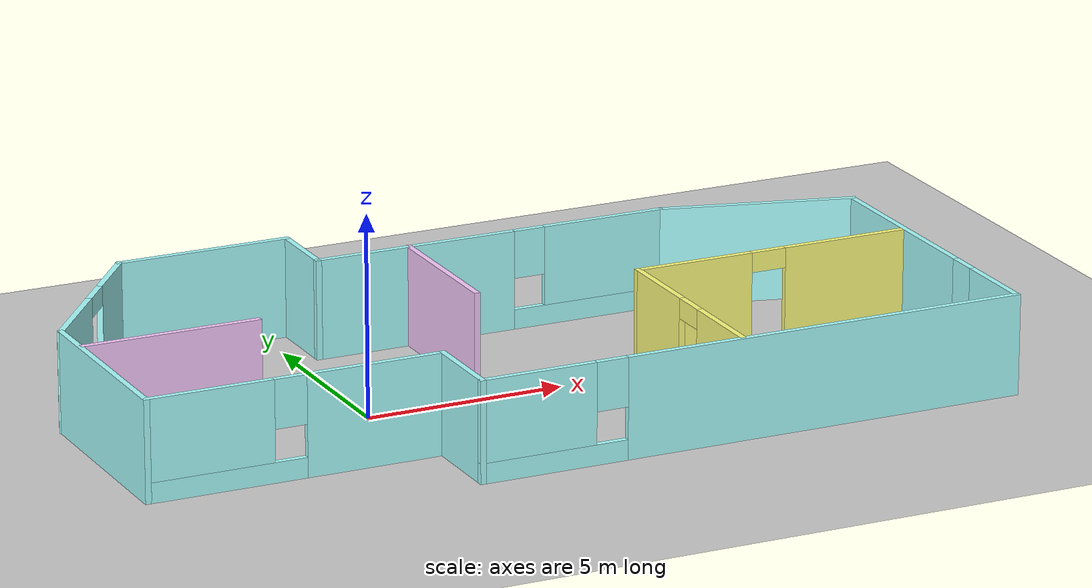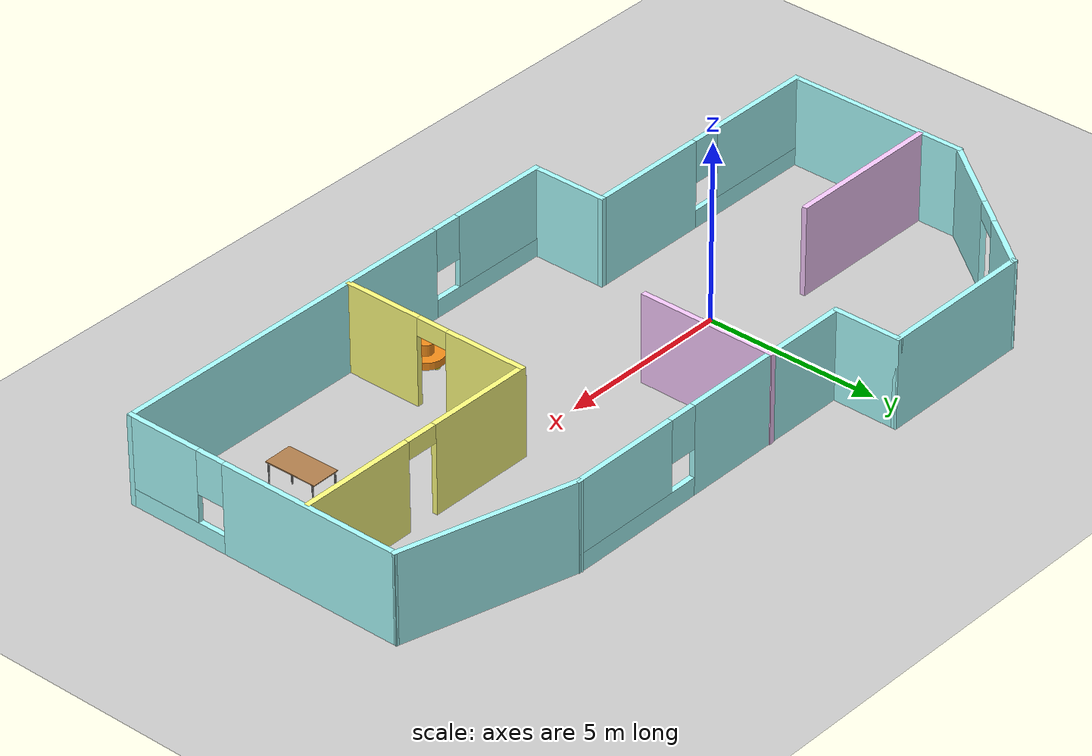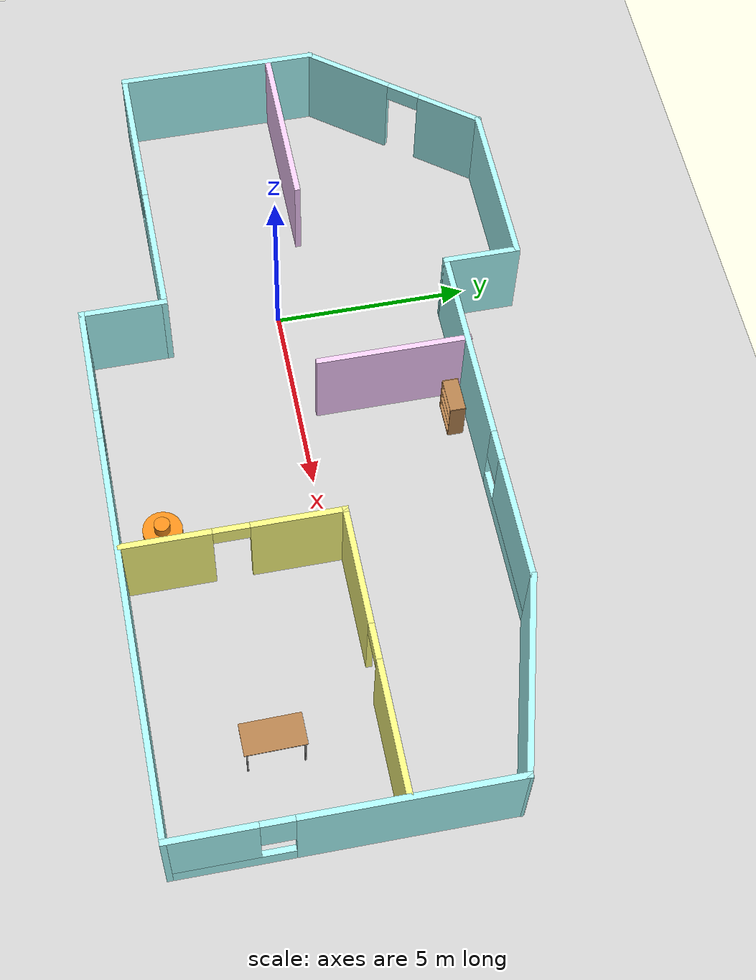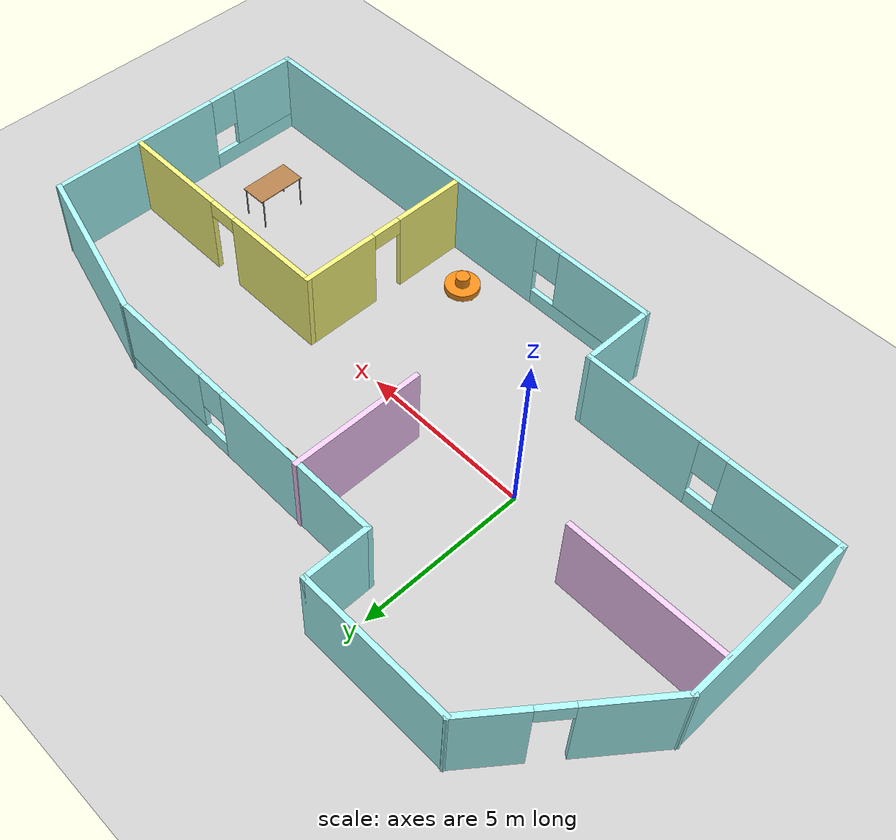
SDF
<sdf version="1.6">
 <world name="default">
  <light name="sun" type="directional">
   <pose>0 0 10 0 -0 0</pose>
   <diffuse>0.8 0.8 0.8 1</diffuse>
   <specular>0.2 0.2 0.2 1</specular>
   <attenuation>
    <range>1000</range>
    <constant>0.9</constant>
    <linear>0.01</linear>
    <quadratic>0.001</quadratic>
   </attenuation>
   <direction>-0.5 0.1 -0.9</direction>
  </light>
  <model name="ground_plane">
   <static>1</static>
   <link name="link">
    <collision name="collision">
     <geometry><plane><normal>0 0 1</normal><size>100 100</size></plane></geometry>
     <surface><friction><ode><mu>100</mu><mu2>50</mu2></ode></friction></surface>
    </collision>
    <visual name="visual">
     <cast_shadows>0</cast_shadows>
     <geometry><plane><normal>0 0 1</normal><size>100 100</size></plane></geometry>
     <material>
      <script><uri>file://media/materials/scripts/gazebo.material</uri><name>Gazebo/Grey</name></script>
     </material>
    </visual>
   </link>
  </model>
  <gravity>0 0 -9.8</gravity>
  <magnetic_field>6e-06 2.3e-05 -4.2e-05</magnetic_field>
  <atmosphere type="adiabatic"/>
  <physics name="default_physics" default="0" type="ode">
   <max_step_size>0.001</max_step_size>
   <real_time_factor>1</real_time_factor>
   <real_time_update_rate>1000</real_time_update_rate>
  </physics>
  <scene><ambient>0.4 0.4 0.4 1</ambient><background>0.7 0.7 0.7 1</background><shadows>1</shadows></scene>
  <spherical_coordinates>
   <surface_model>EARTH_WGS84</surface_model>
   <latitude_deg>0</latitude_deg>
   <longitude_deg>0</longitude_deg>
   <elevation>0</elevation>
   <heading_deg>0</heading_deg>
  </spherical_coordinates>
  <model name="building">
   <pose>3.80498 0.548131 0 0 -0 0</pose>
   <link name="Wall_0">
    <collision name="Wall_0_Collision">
     <geometry><box><size>4.5 0.15 2.5</size></box></geometry>
     <pose>0 0 1.25 0 -0 0</pose>
    </collision>
    <visual name="Wall_0_Visual">
     <pose>0 0 1.25 0 -0 0</pose>
     <geometry><box><size>4.5 0.15 2.5</size></box></geometry>
     <material>
      <script><uri>file://media/materials/scripts/gazebo.material</uri><name>Gazebo/Grey</name></script>
      <ambient>0.666667 1 1 1</ambient>
     </material>
     <meta><layer>0</layer></meta>
    </visual>
    <pose>-5.3531 5.58757 0 0 -0 0</pose>
   </link>
   <link name="Wall_1">
    <collision name="Wall_1_Collision">
     <geometry><box><size>2 0.15 2.5</size></box></geometry>
     <pose>0 0 1.25 0 -0 0</pose>
    </collision>
    <visual name="Wall_1_Visual">
     <pose>0 0 1.25 0 -0 0</pose>
     <geometry><box><size>2 0.15 2.5</size></box></geometry>
     <material>
      <script><uri>file://media/materials/scripts/gazebo.material</uri><name>Gazebo/Grey</name></script>
      <ambient>0.666667 1 1 1</ambient>
     </material>
     <meta><layer>0</layer></meta>
    </visual>
    <pose>-3.1781 4.66257 0 0 0 -1.5708</pose>
   </link>
   <link name="Wall_11">
    <collision name="Wall_11_Collision">
     <geometry><box><size>4.5 0.15 2.5</size></box></geometry>
     <pose>0 0 1.25 0 -0 0</pose>
    </collision>
    <visual name="Wall_11_Visual">
     <pose>0 0 1.25 0 -0 0</pose>
     <geometry><box><size>4.5 0.15 2.5</size></box></geometry>
     <material>
      <script><uri>file://media/materials/scripts/gazebo.material</uri><name>Gazebo/Grey</name></script>
      <ambient>0.976471 0.796078 1 1</ambient>
     </material>
     <meta><layer>0</layer></meta>
    </visual>
    <pose>-8.33401 0.416591 0 0 -0 0</pose>
   </link>
   <link name="Wall_13">
    <collision name="Wall_13_Collision">
     <geometry><box><size>3.93929 0.15 2.5</size></box></geometry>
     <pose>0 0 1.25 0 -0 0</pose>
    </collision>
    <visual name="Wall_13_Visual">
     <pose>0 0 1.25 0 -0 0</pose>
     <geometry><box><size>3.93929 0.15 2.5</size></box></geometry>
     <material>
      <script><uri>file://media/materials/scripts/gazebo.material</uri><name>Gazebo/Grey</name></script>
      <ambient>0.976471 0.796078 1 1</ambient>
     </material>
     <meta><layer>0</layer></meta>
    </visual>
    <pose>-0.775413 1.86793 0 0 0 -1.5708</pose>
   </link>
   <link name="Wall_2">
    <pose>1.3719 3.73757 0 0 -0 0</pose>
    <visual name="Wall_2_Visual_0">
     <pose>-2.00445 0 1.25 0 -0 0</pose>
     <geometry><box><size>5.24111 0.15 2.5</size></box></geometry>
     <material>
      <script><uri>file://media/materials/scripts/gazebo.material</uri><name>Gazebo/Grey</name></script>
      <ambient>0.666667 1 1 1</ambient>
     </material>
     <meta><layer>0</layer></meta>
    </visual>
    <collision name="Wall_2_Collision_0">
     <geometry><box><size>5.24111 0.15 2.5</size></box></geometry>
     <pose>-2.00445 0 1.25 0 -0 0</pose>
    </collision>
    <visual name="Wall_2_Visual_1">
     <pose>2.62055 0 0.25 0 -0 0</pose>
     <geometry><box><size>4.00889 0.15 0.5</size></box></geometry>
     <material>
      <script><uri>file://media/materials/scripts/gazebo.material</uri><name>Gazebo/Grey</name></script>
      <ambient>0.666667 1 1 1</ambient>
     </material>
     <meta><layer>0</layer></meta>
    </visual>
    <collision name="Wall_2_Collision_1">
     <geometry><box><size>4.00889 0.15 0.5</size></box></geometry>
     <pose>2.62055 0 0.25 0 -0 0</pose>
    </collision>
    <visual name="Wall_2_Visual_2">
     <pose>3.02055 0 1.5 0 -0 0</pose>
     <geometry><box><size>3.2089 0.15 2</size></box></geometry>
     <material>
      <script><uri>file://media/materials/scripts/gazebo.material</uri><name>Gazebo/Grey</name></script>
      <ambient>0.666667 1 1 1</ambient>
     </material>
     <meta><layer>0</layer></meta>
    </visual>
    <collision name="Wall_2_Collision_2">
     <geometry><box><size>3.2089 0.15 2</size></box></geometry>
     <pose>3.02055 0 1.5 0 -0 0</pose>
    </collision>
    <visual name="Wall_2_Visual_3">
     <pose>1.01611 0 1.9 0 -0 0</pose>
     <geometry><box><size>0.8 0.15 1.2</size></box></geometry>
     <material>
      <script><uri>file://media/materials/scripts/gazebo.material</uri><name>Gazebo/Grey</name></script>
      <ambient>0.666667 1 1 1</ambient>
     </material>
     <meta><layer>0</layer></meta>
    </visual>
    <collision name="Wall_2_Collision_3">
     <geometry><box><size>0.8 0.15 1.2</size></box></geometry>
     <pose>1.01611 0 1.9 0 -0 0</pose>
    </collision>
   </link>
   <link name="Wall_20">
    <pose>6.95948 -0.191759 0 0 -0 3.14159</pose>
    <visual name="Wall_20_Visual_0">
     <pose>-1.98745 0 1.25 0 -0 0</pose>
     <geometry><box><size>3.2751 0.15 2.5</size></box></geometry>
     <material>
      <script><uri>file://media/materials/scripts/gazebo.material</uri><name>Gazebo/Grey</name></script>
      <ambient>1 1 0.498039 1</ambient>
     </material>
     <meta><layer>0</layer></meta>
    </visual>
    <collision name="Wall_20_Collision_0">
     <geometry><box><size>3.2751 0.15 2.5</size></box></geometry>
     <pose>-1.98745 0 1.25 0 -0 0</pose>
    </collision>
    <visual name="Wall_20_Visual_1">
     <pose>2.08755 0 1.25 0 -0 0</pose>
     <geometry><box><size>3.0749 0.15 2.5</size></box></geometry>
     <material>
      <script><uri>file://media/materials/scripts/gazebo.material</uri><name>Gazebo/Grey</name></script>
      <ambient>1 1 0.498039 1</ambient>
     </material>
     <meta><layer>0</layer></meta>
    </visual>
    <collision name="Wall_20_Collision_1">
     <geometry><box><size>3.0749 0.15 2.5</size></box></geometry>
     <pose>2.08755 0 1.25 0 -0 0</pose>
    </collision>
    <visual name="Wall_20_Visual_2">
     <pose>0.1001 0 2.25 0 -0 0</pose>
     <geometry><box><size>0.9 0.15 0.5</size></box></geometry>
     <material>
      <script><uri>file://media/materials/scripts/gazebo.material</uri><name>Gazebo/Grey</name></script>
      <ambient>1 1 0.498039 1</ambient>
     </material>
     <meta><layer>0</layer></meta>
    </visual>
    <collision name="Wall_20_Collision_2">
     <geometry><box><size>0.9 0.15 0.5</size></box></geometry>
     <pose>0.1001 0 2.25 0 -0 0</pose>
    </collision>
   </link>
   <link name="Wall_21">
    <pose>3.40948 -2.86676 0 0 0 -1.5708</pose>
    <visual name="Wall_21_Visual_0">
     <pose>-1.56871 0 1.25 0 -0 0</pose>
     <geometry><box><size>2.36258 0.15 2.5</size></box></geometry>
     <material>
      <script><uri>file://media/materials/scripts/gazebo.material</uri><name>Gazebo/Grey</name></script>
      <ambient>1 1 0.498039 1</ambient>
     </material>
     <meta><layer>0</layer></meta>
    </visual>
    <collision name="Wall_21_Collision_0">
     <geometry><box><size>2.36258 0.15 2.5</size></box></geometry>
     <pose>-1.56871 0 1.25 0 -0 0</pose>
    </collision>
    <visual name="Wall_21_Visual_1">
     <pose>1.63129 0 1.25 0 -0 0</pose>
     <geometry><box><size>2.23742 0.15 2.5</size></box></geometry>
     <material>
      <script><uri>file://media/materials/scripts/gazebo.material</uri><name>Gazebo/Grey</name></script>
      <ambient>1 1 0.498039 1</ambient>
     </material>
     <meta><layer>0</layer></meta>
    </visual>
    <collision name="Wall_21_Collision_1">
     <geometry><box><size>2.23742 0.15 2.5</size></box></geometry>
     <pose>1.63129 0 1.25 0 -0 0</pose>
    </collision>
    <visual name="Wall_21_Visual_2">
     <pose>0.062575 0 2.25 0 -0 0</pose>
     <geometry><box><size>0.9 0.15 0.5</size></box></geometry>
     <material>
      <script><uri>file://media/materials/scripts/gazebo.material</uri><name>Gazebo/Grey</name></script>
      <ambient>1 1 0.498039 1</ambient>
     </material>
     <meta><layer>0</layer></meta>
    </visual>
    <collision name="Wall_21_Collision_2">
     <geometry><box><size>0.9 0.15 0.5</size></box></geometry>
     <pose>0.062575 0 2.25 0 -0 0</pose>
    </collision>
   </link>
   <link name="Wall_3">
    <collision name="Wall_3_Collision">
     <geometry><box><size>5 0.15 2.5</size></box></geometry>
     <pose>0 0 1.25 0 -0 0</pose>
    </collision>
    <visual name="Wall_3_Visual">
     <pose>0 0 1.25 0 -0 0</pose>
     <geometry><box><size>5 0.15 2.5</size></box></geometry>
     <material>
      <script><uri>file://media/materials/scripts/gazebo.material</uri><name>Gazebo/Grey</name></script>
      <ambient>0.666667 1 1 1</ambient>
     </material>
     <meta><layer>0</layer></meta>
    </visual>
    <pose>8.26427 3.10993 0 0 0 -0.261799</pose>
   </link>
   <link name="Wall_4">
    <pose>10.6066 -1.56771 0 0 0 -1.5708</pose>
    <visual name="Wall_4_Visual_0">
     <pose>-1.49043 0 1.25 0 -0 0</pose>
     <geometry><box><size>5.26913 0.15 2.5</size></box></geometry>
     <material>
      <script><uri>file://media/materials/scripts/gazebo.material</uri><name>Gazebo/Grey</name></script>
      <ambient>0.666667 1 1 1</ambient>
     </material>
     <meta><layer>0</layer></meta>
    </visual>
    <collision name="Wall_4_Collision_0">
     <geometry><box><size>5.26913 0.15 2.5</size></box></geometry>
     <pose>-1.49043 0 1.25 0 -0 0</pose>
    </collision>
    <visual name="Wall_4_Visual_1">
     <pose>2.63457 0 0.25 0 -0 0</pose>
     <geometry><box><size>2.98087 0.15 0.5</size></box></geometry>
     <material>
      <script><uri>file://media/materials/scripts/gazebo.material</uri><name>Gazebo/Grey</name></script>
      <ambient>0.666667 1 1 1</ambient>
     </material>
     <meta><layer>0</layer></meta>
    </visual>
    <collision name="Wall_4_Collision_1">
     <geometry><box><size>2.98087 0.15 0.5</size></box></geometry>
     <pose>2.63457 0 0.25 0 -0 0</pose>
    </collision>
    <visual name="Wall_4_Visual_2">
     <pose>3.03457 0 1.5 0 -0 0</pose>
     <geometry><box><size>2.18087 0.15 2</size></box></geometry>
     <material>
      <script><uri>file://media/materials/scripts/gazebo.material</uri><name>Gazebo/Grey</name></script>
      <ambient>0.666667 1 1 1</ambient>
     </material>
     <meta><layer>0</layer></meta>
    </visual>
    <collision name="Wall_4_Collision_2">
     <geometry><box><size>2.18087 0.15 2</size></box></geometry>
     <pose>3.03457 0 1.5 0 -0 0</pose>
    </collision>
    <visual name="Wall_4_Visual_3">
     <pose>1.54413 0 1.9 0 -0 0</pose>
     <geometry><box><size>0.8 0.15 1.2</size></box></geometry>
     <material>
      <script><uri>file://media/materials/scripts/gazebo.material</uri><name>Gazebo/Grey</name></script>
      <ambient>0.666667 1 1 1</ambient>
     </material>
     <meta><layer>0</layer></meta>
    </visual>
    <collision name="Wall_4_Collision_3">
     <geometry><box><size>0.8 0.15 1.2</size></box></geometry>
     <pose>1.54413 0 1.9 0 -0 0</pose>
    </collision>
   </link>
   <link name="Wall_5">
    <pose>3.68164 -5.61771 0 0 -0 3.14159</pose>
    <visual name="Wall_5_Visual_0">
     <pose>-1.8669 0 1.25 0 -0 0</pose>
     <geometry><box><size>10.2662 0.15 2.5</size></box></geometry>
     <material>
      <script><uri>file://media/materials/scripts/gazebo.material</uri><name>Gazebo/Grey</name></script>
      <ambient>0.666667 1 1 1</ambient>
     </material>
     <meta><layer>0</layer></meta>
    </visual>
    <collision name="Wall_5_Collision_0">
     <geometry><box><size>10.2662 0.15 2.5</size></box></geometry>
     <pose>-1.8669 0 1.25 0 -0 0</pose>
    </collision>
    <visual name="Wall_5_Visual_1">
     <pose>5.1331 0 0.25 0 -0 0</pose>
     <geometry><box><size>3.7338 0.15 0.5</size></box></geometry>
     <material>
      <script><uri>file://media/materials/scripts/gazebo.material</uri><name>Gazebo/Grey</name></script>
      <ambient>0.666667 1 1 1</ambient>
     </material>
     <meta><layer>0</layer></meta>
    </visual>
    <collision name="Wall_5_Collision_1">
     <geometry><box><size>3.7338 0.15 0.5</size></box></geometry>
     <pose>5.1331 0 0.25 0 -0 0</pose>
    </collision>
    <visual name="Wall_5_Visual_2">
     <pose>5.5331 0 1.5 0 -0 0</pose>
     <geometry><box><size>2.9338 0.15 2</size></box></geometry>
     <material>
      <script><uri>file://media/materials/scripts/gazebo.material</uri><name>Gazebo/Grey</name></script>
      <ambient>0.666667 1 1 1</ambient>
     </material>
     <meta><layer>0</layer></meta>
    </visual>
    <collision name="Wall_5_Collision_2">
     <geometry><box><size>2.9338 0.15 2</size></box></geometry>
     <pose>5.5331 0 1.5 0 -0 0</pose>
    </collision>
    <visual name="Wall_5_Visual_3">
     <pose>3.6662 0 1.9 0 -0 0</pose>
     <geometry><box><size>0.8 0.15 1.2</size></box></geometry>
     <material>
      <script><uri>file://media/materials/scripts/gazebo.material</uri><name>Gazebo/Grey</name></script>
      <ambient>0.666667 1 1 1</ambient>
     </material>
     <meta><layer>0</layer></meta>
    </visual>
    <collision name="Wall_5_Collision_3">
     <geometry><box><size>0.8 0.15 1.2</size></box></geometry>
     <pose>3.6662 0 1.9 0 -0 0</pose>
    </collision>
   </link>
   <link name="Wall_6">
    <collision name="Wall_6_Collision">
     <geometry><box><size>2.25 0.15 2.5</size></box></geometry>
     <pose>0 0 1.25 0 -0 0</pose>
    </collision>
    <visual name="Wall_6_Visual">
     <pose>0 0 1.25 0 -0 0</pose>
     <geometry><box><size>2.25 0.15 2.5</size></box></geometry>
     <material>
      <script><uri>file://media/materials/scripts/gazebo.material</uri><name>Gazebo/Grey</name></script>
      <ambient>0.666667 1 1 1</ambient>
     </material>
     <meta><layer>0</layer></meta>
    </visual>
    <pose>-3.24336 -4.56771 0 0 -0 1.5708</pose>
   </link>
   <link name="Wall_7">
    <pose>-6.91836 -3.51771 0 0 -0 3.14159</pose>
    <visual name="Wall_7_Visual_0">
     <pose>-1.99826 0 1.25 0 -0 0</pose>
     <geometry><box><size>3.50348 0.15 2.5</size></box></geometry>
     <material>
      <script><uri>file://media/materials/scripts/gazebo.material</uri><name>Gazebo/Grey</name></script>
      <ambient>0.666667 1 1 1</ambient>
     </material>
     <meta><layer>0</layer></meta>
    </visual>
    <collision name="Wall_7_Collision_0">
     <geometry><box><size>3.50348 0.15 2.5</size></box></geometry>
     <pose>-1.99826 0 1.25 0 -0 0</pose>
    </collision>
    <visual name="Wall_7_Visual_1">
     <pose>1.75174 0 0.25 0 -0 0</pose>
     <geometry><box><size>3.99652 0.15 0.5</size></box></geometry>
     <material>
      <script><uri>file://media/materials/scripts/gazebo.material</uri><name>Gazebo/Grey</name></script>
      <ambient>0.666667 1 1 1</ambient>
     </material>
     <meta><layer>0</layer></meta>
    </visual>
    <collision name="Wall_7_Collision_1">
     <geometry><box><size>3.99652 0.15 0.5</size></box></geometry>
     <pose>1.75174 0 0.25 0 -0 0</pose>
    </collision>
    <visual name="Wall_7_Visual_2">
     <pose>2.15174 0 1.5 0 -0 0</pose>
     <geometry><box><size>3.19652 0.15 2</size></box></geometry>
     <material>
      <script><uri>file://media/materials/scripts/gazebo.material</uri><name>Gazebo/Grey</name></script>
      <ambient>0.666667 1 1 1</ambient>
     </material>
     <meta><layer>0</layer></meta>
    </visual>
    <collision name="Wall_7_Collision_2">
     <geometry><box><size>3.19652 0.15 2</size></box></geometry>
     <pose>2.15174 0 1.5 0 -0 0</pose>
    </collision>
    <visual name="Wall_7_Visual_3">
     <pose>0.153478 0 1.9 0 -0 0</pose>
     <geometry><box><size>0.8 0.15 1.2</size></box></geometry>
     <material>
      <script><uri>file://media/materials/scripts/gazebo.material</uri><name>Gazebo/Grey</name></script>
      <ambient>0.666667 1 1 1</ambient>
     </material>
     <meta><layer>0</layer></meta>
    </visual>
    <collision name="Wall_7_Collision_3">
     <geometry><box><size>0.8 0.15 1.2</size></box></geometry>
     <pose>0.153478 0 1.9 0 -0 0</pose>
    </collision>
   </link>
   <link name="Wall_8">
    <collision name="Wall_8_Collision">
     <geometry><box><size>5.25 0.15 2.5</size></box></geometry>
     <pose>0 0 1.25 0 -0 0</pose>
    </collision>
    <visual name="Wall_8_Visual">
     <pose>0 0 1.25 0 -0 0</pose>
     <geometry><box><size>5.25 0.15 2.5</size></box></geometry>
     <material>
      <script><uri>file://media/materials/scripts/gazebo.material</uri><name>Gazebo/Grey</name></script>
      <ambient>0.666667 1 1 1</ambient>
     </material>
     <meta><layer>0</layer></meta>
    </visual>
    <pose>-10.5934 -0.967706 0 0 -0 1.5708</pose>
   </link>
   <link name="Wall_9">
    <pose>-9.06073 3.58493 0 0 -0 0.917571</pose>
    <visual name="Wall_9_Visual_0">
     <pose>-1.36256 0 1.25 0 -0 0</pose>
     <geometry><box><size>2.4685 0.15 2.5</size></box></geometry>
     <material>
      <script><uri>file://media/materials/scripts/gazebo.material</uri><name>Gazebo/Grey</name></script>
      <ambient>0.666667 1 1 1</ambient>
     </material>
     <meta><layer>0</layer></meta>
    </visual>
    <collision name="Wall_9_Collision_0">
     <geometry><box><size>2.4685 0.15 2.5</size></box></geometry>
     <pose>-1.36256 0 1.25 0 -0 0</pose>
    </collision>
    <visual name="Wall_9_Visual_1">
     <pose>1.68425 0 1.25 0 -0 0</pose>
     <geometry><box><size>1.82511 0.15 2.5</size></box></geometry>
     <material>
      <script><uri>file://media/materials/scripts/gazebo.material</uri><name>Gazebo/Grey</name></script>
      <ambient>0.666667 1 1 1</ambient>
     </material>
     <meta><layer>0</layer></meta>
    </visual>
    <collision name="Wall_9_Collision_1">
     <geometry><box><size>1.82511 0.15 2.5</size></box></geometry>
     <pose>1.68425 0 1.25 0 -0 0</pose>
    </collision>
    <visual name="Wall_9_Visual_2">
     <pose>0.321694 0 2.25 0 -0 0</pose>
     <geometry><box><size>0.9 0.15 0.5</size></box></geometry>
     <material>
      <script><uri>file://media/materials/scripts/gazebo.material</uri><name>Gazebo/Grey</name></script>
      <ambient>0.666667 1 1 1</ambient>
     </material>
     <meta><layer>0</layer></meta>
    </visual>
    <collision name="Wall_9_Collision_2">
     <geometry><box><size>0.9 0.15 0.5</size></box></geometry>
     <pose>0.321694 0 2.25 0 -0 0</pose>
    </collision>
   </link>
   <static>1</static>
  </model>
  <model name="my_caster">
   <link name="link_0">
    <pose>0.003333 -0 0.025 0 -0 0</pose>
    <inertial>
     <mass>1</mass>
     <inertia><ixx>0.145833</ixx><ixy>0</ixy><ixz>0</ixz><iyy>0.145833</iyy><iyz>0</iyz><izz>0.125</izz></inertia>
    </inertial>
    <visual name="visual">
     <geometry><cylinder><radius>0.5</radius><length>0.2</length></cylinder></geometry>
     <material>
      <lighting>1</lighting>
      <script><uri>file://media/materials/scripts/gazebo.material</uri><name>Gazebo/Orange</name></script>
      <shader type="pixel"><normal_map>__default__</normal_map></shader>
      <ambient>1 0.5088 0.0468 1</ambient>
      <diffuse>1 0.5088 0.0468 1</diffuse>
      <specular>0.5 0.5 0.5 128</specular>
      <emissive>0 0 0 1</emissive>
     </material>
    </visual>
    <collision name="collision">
     <geometry><cylinder><radius>0.5</radius><length>0.2</length></cylinder></geometry>
     <surface>
      <friction>
       <ode><mu>1</mu><mu2>1</mu2><fdir1>0 0 0</fdir1><slip1>0</slip1><slip2>0</slip2></ode>
       <torsional>
        <coefficient>1</coefficient>
        <patch_radius>0</patch_radius>
        <surface_radius>0</surface_radius>
        <use_patch_radius>1</use_patch_radius>
        <ode><slip>0</slip></ode>
       </torsional>
      </friction>
      <bounce><restitution_coefficient>0</restitution_coefficient><threshold>1e+06</threshold></bounce>
      <contact>
       <collide_without_contact>0</collide_without_contact>
       <collide_without_contact_bitmask>1</collide_without_contact_bitmask>
       <collide_bitmask>1</collide_bitmask>
       <ode>
        <soft_cfm>0</soft_cfm>
        <soft_erp>0.2</soft_erp>
        <kp>1e+13</kp>
        <kd>1</kd>
        <max_vel>0.01</max_vel>
        <min_depth>0</min_depth>
       </ode>
       <bullet>
        <split_impulse>1</split_impulse>
        <split_impulse_penetration_threshold>-0.01</split_impulse_penetration_threshold>
        <soft_cfm>0</soft_cfm>
        <soft_erp>0.2</soft_erp>
        <kp>1e+13</kp>
        <kd>1</kd>
       </bullet>
      </contact>
     </surface>
    </collision>
   </link>
   <link name="link_1">
    <pose>-0.016667 -0.4 -0.075 0 -0 0</pose>
    <inertial>
     <mass>1</mass>
     <inertia><ixx>0.1</ixx><ixy>0</ixy><ixz>0</ixz><iyy>0.1</iyy><iyz>0</iyz><izz>0.1</izz></inertia>
    </inertial>
    <visual name="visual">
     <geometry><sphere><radius>0.1</radius></sphere></geometry>
     <material>
      <lighting>1</lighting>
      <script><uri>file://media/materials/scripts/gazebo.material</uri><name>Gazebo/Yellow</name></script>
      <shader type="pixel"><normal_map>__default__</normal_map></shader>
      <ambient>1 1 0 1</ambient>
      <diffuse>1 1 0 1</diffuse>
      <specular>0 0 0 1</specular>
      <emissive>0 0 0 1</emissive>
     </material>
    </visual>
    <collision name="collision">
     <geometry><sphere><radius>0.1</radius></sphere></geometry>
     <surface>
      <friction>
       <ode><mu>1</mu><mu2>1</mu2><fdir1>0 0 0</fdir1><slip1>0</slip1><slip2>0</slip2></ode>
       <torsional>
        <coefficient>1</coefficient>
        <patch_radius>0</patch_radius>
        <surface_radius>0</surface_radius>
        <use_patch_radius>1</use_patch_radius>
        <ode><slip>0</slip></ode>
       </torsional>
      </friction>
      <bounce><restitution_coefficient>0</restitution_coefficient><threshold>1e+06</threshold></bounce>
      <contact>
       <collide_without_contact>0</collide_without_contact>
       <collide_without_contact_bitmask>1</collide_without_contact_bitmask>
       <collide_bitmask>1</collide_bitmask>
       <ode>
        <soft_cfm>0</soft_cfm>
        <soft_erp>0.2</soft_erp>
        <kp>1e+13</kp>
        <kd>1</kd>
        <max_vel>0.01</max_vel>
        <min_depth>0</min_depth>
       </ode>
       <bullet>
        <split_impulse>1</split_impulse>
        <split_impulse_penetration_threshold>-0.01</split_impulse_penetration_threshold>
        <soft_cfm>0</soft_cfm>
        <soft_erp>0.2</soft_erp>
        <kp>1e+13</kp>
        <kd>1</kd>
       </bullet>
      </contact>
     </surface>
    </collision>
   </link>
   <link name="link_1_clone">
    <pose>0.003333 0.4 -0.075 0 -0 0</pose>
    <inertial>
     <mass>1</mass>
     <inertia><ixx>0.1</ixx><ixy>0</ixy><ixz>0</ixz><iyy>0.1</iyy><iyz>0</iyz><izz>0.1</izz></inertia>
    </inertial>
    <visual name="visual">
     <geometry><sphere><radius>0.1</radius></sphere></geometry>
     <material>
      <lighting>1</lighting>
      <script><uri>file://media/materials/scripts/gazebo.material</uri><name>Gazebo/Yellow</name></script>
      <shader type="pixel"><normal_map>__default__</normal_map></shader>
      <ambient>1 1 0 1</ambient>
      <diffuse>1 1 0 1</diffuse>
      <specular>0 0 0 1</specular>
      <emissive>0 0 0 1</emissive>
     </material>
    </visual>
    <collision name="collision">
     <geometry><sphere><radius>0.1</radius></sphere></geometry>
     <surface>
      <friction>
       <ode><mu>1</mu><mu2>1</mu2><fdir1>0 0 0</fdir1><slip1>0</slip1><slip2>0</slip2></ode>
       <torsional>
        <coefficient>1</coefficient>
        <patch_radius>0</patch_radius>
        <surface_radius>0</surface_radius>
        <use_patch_radius>1</use_patch_radius>
        <ode><slip>0</slip></ode>
       </torsional>
      </friction>
      <bounce><restitution_coefficient>0</restitution_coefficient><threshold>1e+06</threshold></bounce>
      <contact>
       <collide_without_contact>0</collide_without_contact>
       <collide_without_contact_bitmask>1</collide_without_contact_bitmask>
       <collide_bitmask>1</collide_bitmask>
       <ode>
        <soft_cfm>0</soft_cfm>
        <soft_erp>0.2</soft_erp>
        <kp>1e+13</kp>
        <kd>1</kd>
        <max_vel>0.01</max_vel>
        <min_depth>0</min_depth>
       </ode>
       <bullet>
        <split_impulse>1</split_impulse>
        <split_impulse_penetration_threshold>-0.01</split_impulse_penetration_threshold>
        <soft_cfm>0</soft_cfm>
        <soft_erp>0.2</soft_erp>
        <kp>1e+13</kp>
        <kd>1</kd>
       </bullet>
      </contact>
     </surface>
    </collision>
   </link>
   <link name="link_1_clone_0">
    <pose>0.403333 -0 -0.075 0 -0 0</pose>
    <inertial>
     <mass>1</mass>
     <inertia><ixx>0.1</ixx><ixy>0</ixy><ixz>0</ixz><iyy>0.1</iyy><iyz>0</iyz><izz>0.1</izz></inertia>
    </inertial>
    <visual name="visual">
     <geometry><sphere><radius>0.1</radius></sphere></geometry>
     <material>
      <lighting>1</lighting>
      <script><uri>file://media/materials/scripts/gazebo.material</uri><name>Gazebo/Yellow</name></script>
      <shader type="pixel"><normal_map>__default__</normal_map></shader>
      <ambient>1 1 0 1</ambient>
      <diffuse>1 1 0 1</diffuse>
      <specular>0 0 0 1</specular>
      <emissive>0 0 0 1</emissive>
     </material>
    </visual>
    <collision name="collision">
     <geometry><sphere><radius>0.1</radius></sphere></geometry>
     <surface>
      <friction>
       <ode><mu>1</mu><mu2>1</mu2><fdir1>0 0 0</fdir1><slip1>0</slip1><slip2>0</slip2></ode>
       <torsional>
        <coefficient>1</coefficient>
        <patch_radius>0</patch_radius>
        <surface_radius>0</surface_radius>
        <use_patch_radius>1</use_patch_radius>
        <ode><slip>0</slip></ode>
       </torsional>
      </friction>
      <bounce><restitution_coefficient>0</restitution_coefficient><threshold>1e+06</threshold></bounce>
      <contact>
       <collide_without_contact>0</collide_without_contact>
       <collide_without_contact_bitmask>1</collide_without_contact_bitmask>
       <collide_bitmask>1</collide_bitmask>
       <ode>
        <soft_cfm>0</soft_cfm>
        <soft_erp>0.2</soft_erp>
        <kp>1e+13</kp>
        <kd>1</kd>
        <max_vel>0.01</max_vel>
        <min_depth>0</min_depth>
       </ode>
       <bullet>
        <split_impulse>1</split_impulse>
        <split_impulse_penetration_threshold>-0.01</split_impulse_penetration_threshold>
        <soft_cfm>0</soft_cfm>
        <soft_erp>0.2</soft_erp>
        <kp>1e+13</kp>
        <kd>1</kd>
       </bullet>
      </contact>
     </surface>
    </collision>
   </link>
   <link name="link_1_clone_1">
    <pose>-0.396667 -0 -0.075 0 -0 0</pose>
    <inertial>
     <mass>1</mass>
     <inertia><ixx>0.1</ixx><ixy>0</ixy><ixz>0</ixz><iyy>0.1</iyy><iyz>0</iyz><izz>0.1</izz></inertia>
    </inertial>
    <visual name="visual">
     <geometry><sphere><radius>0.1</radius></sphere></geometry>
     <material>
      <lighting>1</lighting>
      <script><uri>file://media/materials/scripts/gazebo.material</uri><name>Gazebo/Yellow</name></script>
      <shader type="pixel"><normal_map>__default__</normal_map></shader>
      <ambient>1 1 0 1</ambient>
      <diffuse>1 1 0 1</diffuse>
      <specular>0 0 0 1</specular>
      <emissive>0 0 0 1</emissive>
     </material>
    </visual>
    <collision name="collision">
     <geometry><sphere><radius>0.1</radius></sphere></geometry>
     <surface>
      <friction>
       <ode><mu>1</mu><mu2>1</mu2><fdir1>0 0 0</fdir1><slip1>0</slip1><slip2>0</slip2></ode>
       <torsional>
        <coefficient>1</coefficient>
        <patch_radius>0</patch_radius>
        <surface_radius>0</surface_radius>
        <use_patch_radius>1</use_patch_radius>
        <ode><slip>0</slip></ode>
       </torsional>
      </friction>
      <bounce><restitution_coefficient>0</restitution_coefficient><threshold>1e+06</threshold></bounce>
      <contact>
       <collide_without_contact>0</collide_without_contact>
       <collide_without_contact_bitmask>1</collide_without_contact_bitmask>
       <collide_bitmask>1</collide_bitmask>
       <ode>
        <soft_cfm>0</soft_cfm>
        <soft_erp>0.2</soft_erp>
        <kp>1e+13</kp>
        <kd>1</kd>
        <max_vel>0.01</max_vel>
        <min_depth>0</min_depth>
       </ode>
       <bullet>
        <split_impulse>1</split_impulse>
        <split_impulse_penetration_threshold>-0.01</split_impulse_penetration_threshold>
        <soft_cfm>0</soft_cfm>
        <soft_erp>0.2</soft_erp>
        <kp>1e+13</kp>
        <kd>1</kd>
       </bullet>
      </contact>
     </surface>
    </collision>
   </link>
   <link name="link_2">
    <pose>0.003333 -0 0.275 0 -0 0</pose>
    <inertial>
     <mass>1</mass>
     <inertia><ixx>0.145833</ixx><ixy>0</ixy><ixz>0</ixz><iyy>0.145833</iyy><iyz>0</iyz><izz>0.125</izz></inertia>
    </inertial>
    <visual name="visual">
     <geometry><cylinder><radius>0.2</radius><length>0.3</length></cylinder></geometry>
     <material>
      <lighting>1</lighting>
      <script><uri>file://media/materials/scripts/gazebo.material</uri><name>Gazebo/Orange</name></script>
      <shader type="pixel"><normal_map>__default__</normal_map></shader>
      <ambient>1 0.5088 0.0468 1</ambient>
      <diffuse>1 0.5088 0.0468 1</diffuse>
      <specular>0.5 0.5 0.5 128</specular>
      <emissive>0 0 0 1</emissive>
     </material>
    </visual>
    <collision name="collision">
     <geometry><cylinder><radius>0.2</radius><length>0.3</length></cylinder></geometry>
     <surface>
      <friction>
       <ode><mu>1</mu><mu2>1</mu2><fdir1>0 0 0</fdir1><slip1>0</slip1><slip2>0</slip2></ode>
       <torsional>
        <coefficient>1</coefficient>
        <patch_radius>0</patch_radius>
        <surface_radius>0</surface_radius>
        <use_patch_radius>1</use_patch_radius>
        <ode><slip>0</slip></ode>
       </torsional>
      </friction>
      <bounce><restitution_coefficient>0</restitution_coefficient><threshold>1e+06</threshold></bounce>
      <contact>
       <collide_without_contact>0</collide_without_contact>
       <collide_without_contact_bitmask>1</collide_without_contact_bitmask>
       <collide_bitmask>1</collide_bitmask>
       <ode>
        <soft_cfm>0</soft_cfm>
        <soft_erp>0.2</soft_erp>
        <kp>1e+13</kp>
        <kd>1</kd>
        <max_vel>0.01</max_vel>
        <min_depth>0</min_depth>
       </ode>
       <bullet>
        <split_impulse>1</split_impulse>
        <split_impulse_penetration_threshold>-0.01</split_impulse_penetration_threshold>
        <soft_cfm>0</soft_cfm>
        <soft_erp>0.2</soft_erp>
        <kp>1e+13</kp>
        <kd>1</kd>
       </bullet>
      </contact>
     </surface>
    </collision>
   </link>
   <joint name="link_0_JOINT_1" type="revolute">
    <parent>link_0</parent>
    <child>link_1</child>
    <axis>
     <xyz>0 0 1</xyz>
     <use_parent_model_frame>0</use_parent_model_frame>
     <limit>
      <lower>-1.79769e+308</lower>
      <upper>1.79769e+308</upper>
      <effort>-1</effort>
      <velocity>-1</velocity>
     </limit>
     <dynamics>
      <spring_reference>0</spring_reference>
      <spring_stiffness>0</spring_stiffness>
      <damping>0</damping>
     </dynamics>
    </axis>
    <physics>
     <ode><limit><cfm>0</cfm><erp>0.2</erp></limit><suspension><cfm>0</cfm><erp>0.2</erp></suspension></ode>
    </physics>
   </joint>
   <joint name="link_0_JOINT_2" type="revolute">
    <parent>link_0</parent>
    <child>link_1_clone</child>
    <axis>
     <xyz>0 0 1</xyz>
     <use_parent_model_frame>0</use_parent_model_frame>
     <limit>
      <lower>-1.79769e+308</lower>
      <upper>1.79769e+308</upper>
      <effort>-1</effort>
      <velocity>-1</velocity>
     </limit>
     <dynamics>
      <spring_reference>0</spring_reference>
      <spring_stiffness>0</spring_stiffness>
      <damping>0</damping>
     </dynamics>
    </axis>
    <physics>
     <ode><limit><cfm>0</cfm><erp>0.2</erp></limit><suspension><cfm>0</cfm><erp>0.2</erp></suspension></ode>
    </physics>
   </joint>
   <joint name="link_0_JOINT_3" type="revolute">
    <parent>link_0</parent>
    <child>link_1_clone_0</child>
    <axis>
     <xyz>1 0 0</xyz>
     <use_parent_model_frame>0</use_parent_model_frame>
     <limit>
      <lower>-1.79769e+308</lower>
      <upper>1.79769e+308</upper>
      <effort>-1</effort>
      <velocity>-1</velocity>
     </limit>
     <dynamics>
      <spring_reference>0</spring_reference>
      <spring_stiffness>0</spring_stiffness>
      <damping>0</damping>
     </dynamics>
    </axis>
    <physics>
     <ode><limit><cfm>0</cfm><erp>0.2</erp></limit><suspension><cfm>0</cfm><erp>0.2</erp></suspension></ode>
    </physics>
   </joint>
   <joint name="link_0_JOINT_4" type="revolute">
    <parent>link_0</parent>
    <child>link_1_clone_1</child>
    <axis>
     <xyz>0 0 1</xyz>
     <use_parent_model_frame>0</use_parent_model_frame>
     <limit>
      <lower>-1.79769e+308</lower>
      <upper>1.79769e+308</upper>
      <effort>-1</effort>
      <velocity>-1</velocity>
     </limit>
     <dynamics>
      <spring_reference>0</spring_reference>
      <spring_stiffness>0</spring_stiffness>
      <damping>0</damping>
     </dynamics>
    </axis>
    <physics>
     <ode><limit><cfm>0</cfm><erp>0.2</erp></limit><suspension><cfm>0</cfm><erp>0.2</erp></suspension></ode>
    </physics>
   </joint>
   <joint name="link_0_JOINT_6" type="revolute">
    <parent>link_0</parent>
    <child>link_2</child>
    <axis>
     <xyz>0 0 1</xyz>
     <use_parent_model_frame>0</use_parent_model_frame>
     <limit>
      <lower>-1.79769e+308</lower>
      <upper>1.79769e+308</upper>
      <effort>-1</effort>
      <velocity>-1</velocity>
     </limit>
     <dynamics>
      <spring_reference>0</spring_reference>
      <spring_stiffness>0</spring_stiffness>
      <damping>0</damping>
     </dynamics>
    </axis>
    <physics>
     <ode><limit><cfm>0</cfm><erp>0.2</erp></limit><suspension><cfm>0</cfm><erp>0.2</erp></suspension></ode>
    </physics>
   </joint>
   <static>0</static>
   <pose>5.78846 -3.94052 0.175 0 0 -0.155307</pose>
  </model>
  <model name="table">
   <static>1</static>
   <link name="link">
    <collision name="surface">
     <pose>0 0 1 0 -0 0</pose>
     <geometry><box><size>1.5 0.8 0.03</size></box></geometry>
     <surface><friction><ode><mu>0.6</mu><mu2>0.6</mu2></ode></friction></surface>
    </collision>
    <visual name="visual1">
     <pose>0 0 1 0 -0 0</pose>
     <geometry><box><size>1.5 0.8 0.03</size></box></geometry>
     <material>
      <script><uri>file://media/materials/scripts/gazebo.material</uri><name>Gazebo/Wood</name></script>
     </material>
    </visual>
    <collision name="front_left_leg">
     <pose>0.68 0.38 0.5 0 -0 0</pose>
     <geometry><cylinder><radius>0.02</radius><length>1</length></cylinder></geometry>
    </collision>
    <visual name="front_left_leg">
     <pose>0.68 0.38 0.5 0 -0 0</pose>
     <geometry><cylinder><radius>0.02</radius><length>1</length></cylinder></geometry>
     <material>
      <script><uri>file://media/materials/scripts/gazebo.material</uri><name>Gazebo/Grey</name></script>
     </material>
    </visual>
    <collision name="front_right_leg">
     <pose>0.68 -0.38 0.5 0 -0 0</pose>
     <geometry><cylinder><radius>0.02</radius><length>1</length></cylinder></geometry>
    </collision>
    <visual name="front_right_leg">
     <pose>0.68 -0.38 0.5 0 -0 0</pose>
     <geometry><cylinder><radius>0.02</radius><length>1</length></cylinder></geometry>
     <material>
      <script><uri>file://media/materials/scripts/gazebo.material</uri><name>Gazebo/Grey</name></script>
     </material>
    </visual>
    <collision name="back_right_leg">
     <pose>-0.68 -0.38 0.5 0 -0 0</pose>
     <geometry><cylinder><radius>0.02</radius><length>1</length></cylinder></geometry>
    </collision>
    <visual name="back_right_leg">
     <pose>-0.68 -0.38 0.5 0 -0 0</pose>
     <geometry><cylinder><radius>0.02</radius><length>1</length></cylinder></geometry>
     <material>
      <script><uri>file://media/materials/scripts/gazebo.material</uri><name>Gazebo/Grey</name></script>
     </material>
    </visual>
    <collision name="back_left_leg">
     <pose>-0.68 0.38 0.5 0 -0 0</pose>
     <geometry><cylinder><radius>0.02</radius><length>1</length></cylinder></geometry>
    </collision>
    <visual name="back_left_leg">
     <pose>-0.68 0.38 0.5 0 -0 0</pose>
     <geometry><cylinder><radius>0.02</radius><length>1</length></cylinder></geometry>
     <material>
      <script><uri>file://media/materials/scripts/gazebo.material</uri><name>Gazebo/Grey</name></script>
     </material>
    </visual>
   </link>
   <pose>11.8548 -2.23601 0 0 0 -1.55675</pose>
  </model>
  <model name="bookshelf">
   <static>1</static>
   <link name="link">
    <inertial><mass>1</mass></inertial>
    <collision name="back">
     <pose>0 0.005 0.6 0 -0 0</pose>
     <geometry><box><size>0.9 0.01 1.2</size></box></geometry>
    </collision>
    <visual name="visual1">
     <pose>0 0.005 0.6 0 -0 0</pose>
     <geometry><box><size>0.9 0.01 1.2</size></box></geometry>
     <material>
      <script><uri>file://media/materials/scripts/gazebo.material</uri><name>Gazebo/Wood</name></script>
     </material>
    </visual>
    <collision name="left_side">
     <pose>0.45 -0.195 0.6 0 -0 0</pose>
     <geometry><box><size>0.02 0.4 1.2</size></box></geometry>
    </collision>
    <visual name="visual2">
     <pose>0.45 -0.195 0.6 0 -0 0</pose>
     <geometry><box><size>0.02 0.4 1.2</size></box></geometry>
     <material>
      <script><uri>file://media/materials/scripts/gazebo.material</uri><name>Gazebo/Wood</name></script>
     </material>
    </visual>
    <collision name="right_side">
     <pose>-0.45 -0.195 0.6 0 -0 0</pose>
     <geometry><box><size>0.02 0.4 1.2</size></box></geometry>
    </collision>
    <visual name="visual3">
     <pose>-0.45 -0.195 0.6 0 -0 0</pose>
     <geometry><box><size>0.02 0.4 1.2</size></box></geometry>
     <material>
      <script><uri>file://media/materials/scripts/gazebo.material</uri><name>Gazebo/Wood</name></script>
     </material>
    </visual>
    <collision name="bottom">
     <pose>0 -0.195 0.03 0 -0 0</pose>
     <geometry><box><size>0.88 0.4 0.06</size></box></geometry>
    </collision>
    <visual name="visual4">
     <pose>0 -0.195 0.03 0 -0 0</pose>
     <geometry><box><size>0.88 0.4 0.06</size></box></geometry>
     <material>
      <script><uri>file://media/materials/scripts/gazebo.material</uri><name>Gazebo/Wood</name></script>
     </material>
    </visual>
    <collision name="top">
     <pose>0 -0.195 1.19 0 -0 0</pose>
     <geometry><box><size>0.88 0.4 0.02</size></box></geometry>
    </collision>
    <visual name="visual5">
     <pose>0 -0.195 1.19 0 -0 0</pose>
     <geometry><box><size>0.88 0.4 0.02</size></box></geometry>
     <material>
      <script><uri>file://media/materials/scripts/gazebo.material</uri><name>Gazebo/Wood</name></script>
     </material>
    </visual>
    <collision name="low_shelf">
     <pose>0 -0.195 0.43 0 -0 0</pose>
     <geometry><box><size>0.88 0.4 0.02</size></box></geometry>
    </collision>
    <visual name="visual6">
     <pose>0 -0.195 0.43 0 -0 0</pose>
     <geometry><box><size>0.88 0.4 0.02</size></box></geometry>
     <material>
      <script><uri>file://media/materials/scripts/gazebo.material</uri><name>Gazebo/Wood</name></script>
     </material>
    </visual>
    <collision name="high_shelf">
     <pose>0 -0.195 0.8 0 -0 0</pose>
     <geometry><box><size>0.88 0.4 0.02</size></box></geometry>
    </collision>
    <visual name="visual7">
     <pose>0 -0.195 0.8 0 -0 0</pose>
     <geometry><box><size>0.88 0.4 0.02</size></box></geometry>
     <material>
      <script><uri>file://media/materials/scripts/gazebo.material</uri><name>Gazebo/Wood</name></script>
     </material>
    </visual>
   </link>
   <pose>3.84365 4.02554 0 0 -0 0</pose>
  </model>
  <plugin filename="libcollision_map_creator.so" name="collision_map_creator"/>
 </world>
</sdf>
